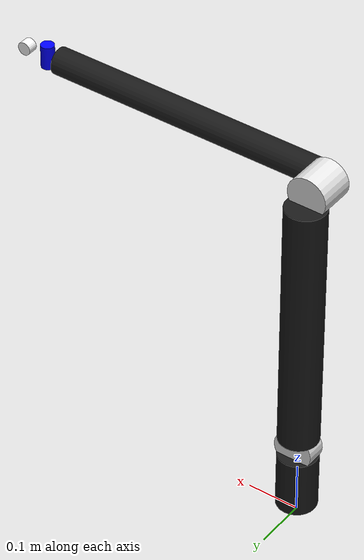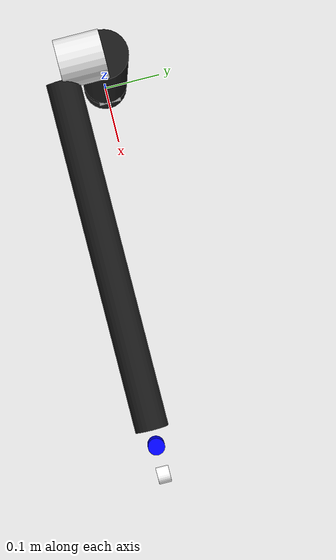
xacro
<?xml version="1.0"?>
<robot xmlns:xacro="http://www.ros.org/wiki/xacro" name="hdt">
    <include filename="$(find andalite_description)/urdf/common.xacro"/>
    <include filename="$(find andalite_description)/urdf/hdt2.xacro"/>

    <link name="arm_mount_panel_dummy">
    </link>
    <xacro:hdt_arm mounting_link="arm_mount_panel_dummy" mounting_origin="0 0 0"/>
</robot>

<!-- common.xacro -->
<robot xmlns:xacro="http://www.ros.org/wiki/xacro">
    <xacro:property name="pi" value="3.1415926535897931"/>
    <xacro:property name="inches" value="0.0254"/>
    <xacro:property name="degrees" value="0.017453293"/>
</robot>

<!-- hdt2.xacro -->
<robot xmlns:xacro="http://www.ros.org/wiki/xacro">
    <xacro:property name="length1" value="0.1524"/>
    <xacro:property name="radius1" value="0.0381"/>

    <xacro:property name="length2" value="0.0381"/>
    <xacro:property name="radius2" value="0.0381"/>

    <xacro:property name="length3" value="0.5461"/>
    <xacro:property name="radius3" value="0.0381"/>

    <xacro:property name="length4" value="0.06985"/>
    <xacro:property name="radius4" value="0.0381"/>

    <xacro:property name="length5" value="0.588"/>
    <xacro:property name="radius5" value="0.0254"/>

    <xacro:property name="length6" value="0.045"/>
    <xacro:property name="radius6" value="0.0127"/>

    <xacro:property name="length7" value="0.01905"/>
    <xacro:property name="radius7" value="0.0127"/>

    <include filename="$(find andalite_description)/config/urdf/common.xacro"/>

    <!-- macro to instantiate the hdt arm -->
    <xacro:macro name="hdt_arm" params="mounting_link mounting_origin">
        <joint name="arm_1_shoulder_twist" type="revolute">
            <parent link="${mounting_link}"/>
            <child link="arm_1_shoulder_twist_link"/>
            <limit lower="${-120*degrees}" upper="${120*degrees}" effort="10" velocity="0.38"/>
            <safety_controller soft_lower_limit="${-110*degrees}" soft_upper_limit="${110*degrees}" k_velocity="0"/>
            <axis xyz="0 0 1"/>
            <origin xyz="${mounting_origin}"/>
            <dynamics damping="10" friction="0.1"/>
        </joint>

        <link name="arm_1_shoulder_twist_link">
            <visual>
                <geometry>
                    <cylinder length="${length1-radius1}" radius="${radius1}"/>
                </geometry>
                <origin rpy="0 0 0" xyz="0.0 0.0 ${length1/2}"/>
                <material name="black">
                    <color rgba="0.1 0.1 0.1 1"/>
                </material>
            </visual>
            <collision>
                <geometry>
                    <cylinder length="${length1-radius1}" radius="${radius1}"/>
                </geometry>
                <origin rpy="0 0 0" xyz="0.0 0.0 ${length1/2}"/>
            </collision>
            <inertial>
                <mass value="1"/>
                <inertia ixx="1.0" ixy="0.0" ixz="0.0" iyy="1.0" iyz="0.0" izz="1.0"/>
                <origin xyz="0 0 ${length1/2}"/>
            </inertial>
        </link>

        <joint name="arm_2_shoulder_lift" type="revolute">
            <parent link="arm_1_shoulder_twist_link"/>
            <child link="arm_2_shoulder_lift_link"/>
            <limit lower="${-110*degrees}" upper="${110*degrees}" effort="10" velocity="0.38"/>
            <safety_controller soft_lower_limit="${-90*degrees}" soft_upper_limit="${90*degrees}" k_velocity="0"/>
            <axis xyz="0 0 -1"/>
            <origin xyz="0.0 0.0 ${length1}" rpy="${pi/2} 0 0"/>
            <dynamics damping="10" friction="0.1"/>
        </joint>

        <link name="arm_2_shoulder_lift_link" >
            <visual>
                <geometry>
                    <cylinder length="${length2}" radius="${radius2}"/>
                </geometry>
                <origin rpy="0 0 0" xyz="0.0 0 0"/>
                <material name="gray">
                    <color rgba="0.9 0.9 0.9 1"/>
                </material>
            </visual>
            <collision>
                <geometry>
                    <cylinder length="${length2}" radius="${radius2}"/>
                </geometry>
                <origin rpy="0 0 0" xyz="0.0 0 0"/>
            </collision>
            <inertial>
                <mass value="1"/>
                <inertia ixx="1.0" ixy="0.0" ixz="0.0" iyy="1.0" iyz="0.0" izz="1.0"/>
                <origin xyz="0 0 0"/>
            </inertial>
        </link>

        <joint name="arm_3_elbow_twist" type="revolute">
            <parent link="arm_2_shoulder_lift_link"/>
            <child link="arm_3_elbow_twist_link"/>
            <limit lower="${-150*degrees}" upper="${150*degrees}" effort="10" velocity="0.38"/>
            <safety_controller soft_lower_limit="${-130*degrees}" soft_upper_limit="${130*degrees}" k_velocity="0"/>
            <axis xyz="0 0 1"/>
            <origin xyz="0.0 0.0 0.0" rpy="${-pi/2} 0 0"/>
            <dynamics damping="10" friction="0.1"/>
        </joint>

        <link name="arm_3_elbow_twist_link">
            <visual>
                <geometry>
                    <cylinder length="${length3-radius3}" radius="${radius3}"/>
                </geometry>
                <origin rpy="0 0 0" xyz="0.0 0.0 ${length3/2}"/>
                <material name="black"/>
            </visual>
            <collision>
                <geometry>
                    <cylinder length="${length3-radius3}" radius="${radius3}"/>
                    <!-- Note: There is a bug in ODE that prevents collision detection with cylinders -->
                </geometry>
                <origin rpy="0 0 0" xyz="0.0 0.0 ${length3/2}"/>
            </collision>
            <inertial>
                <mass value="1"/>
                <inertia ixx="1.0" ixy="0.0" ixz="0.0" iyy="1.0" iyz="0.0" izz="1.0"/>
                <origin xyz="0 0 ${length3/2}"/>
            </inertial>
        </link>

        <joint name="arm_4_elbow_lift" type="revolute">
            <parent link="arm_3_elbow_twist_link"/>
            <child link="arm_4_elbow_lift_link"/>
            <limit lower="${-110*degrees}" upper="${110*degrees}" effort="10" velocity="0.38"/>
            <safety_controller soft_lower_limit="${-105*degrees}" soft_upper_limit="${105*degrees}" k_velocity="0"/>
            <axis xyz="0 0 -1"/>
            <origin xyz="0.0 0.0 ${length3}" rpy="${pi/2} ${pi/2} 0"/>
            <dynamics damping="10" friction="0.1"/>
        </joint>

        <link name="arm_4_elbow_lift_link">
            <visual>
                <geometry>
                    <cylinder length="${length4}" radius="${radius4}"/>
                </geometry>
                <origin rpy="0 0 0" xyz="0.0 0.0 ${length4/2}"/>
                <material name="gray"/>
            </visual>
            <collision>
                <geometry>
                    <cylinder length="${length4}" radius="${radius4}"/>
                </geometry>
                <origin rpy="0 0 0" xyz="0.0 0.0 ${length4/2}"/>
            </collision>
            <inertial>
                <mass value="1"/>
                <inertia ixx="1.0" ixy="0.0" ixz="0.0" iyy="1.0" iyz="0.0" izz="1.0"/>
                <origin xyz="0 0 ${length4/2}"/>
            </inertial>
        </link>

        <joint name="arm_5_wrist_twist" type="revolute">
            <parent link="arm_4_elbow_lift_link"/>
            <child link="arm_5_wrist_twist_link"/>
            <limit lower="${-85*degrees}" upper="${85*degrees}" effort="10" velocity="0.38"/>
            <safety_controller soft_lower_limit="${-85*degrees}" soft_upper_limit="${85*degrees}" k_velocity="0"/>
            <axis xyz="0 0 1"/>
            <origin xyz="0.0 0.0 ${length4}" rpy="${-pi/2} ${-pi/2} 0"/>
            <dynamics damping="10" friction="0.1"/>
        </joint>

        <link name="arm_5_wrist_twist_link">
            <visual>
                <geometry>
                    <cylinder length="${length5-2*radius5}" radius="${radius5}"/>
                </geometry>
                <origin rpy="0 0 0" xyz="0.0 0.0 ${length5/2}"/>
                <material name="black"/>
            </visual>
            <collision>
                <geometry>
                    <cylinder length="${length5-radius5}" radius="${radius5}"/>
                    <!-- Note: There is a bug in ODE that prevents collision detection with cylinders -->
                </geometry>
                <origin rpy="0 0 0" xyz="0.0 0.0 ${length5/2}"/>
            </collision>
            <inertial>
                <mass value="1"/>
                <inertia ixx="1.0" ixy="0.0" ixz="0.0" iyy="1.0" iyz="0.0" izz="1.0"/>
                <origin xyz="0 0 ${length5/2}"/>
            </inertial>
        </link>

        <joint name="arm_6_wrist_lift" type="revolute">
            <parent link="arm_5_wrist_twist_link"/>
            <child link="arm_6_wrist_lift_link"/>
            <limit lower="${-40*degrees}" upper="${40*degrees}" effort="10" velocity="0.38"/>
            <safety_controller soft_lower_limit="${-40*degrees}" soft_upper_limit="${40*degrees}" k_velocity="0"/>
            <axis xyz="0 0 -1"/>
            <origin xyz="0.0 0.0 ${length5}" rpy="${pi/2} -${pi/2} 0"/>
            <dynamics damping="10" friction="0.1"/>
        </joint>

        <link name="arm_6_wrist_lift_link">
            <visual>
                <geometry>
                    <cylinder length="${length6}" radius="${radius6}"/>
                </geometry>
                <origin rpy="0 0 0" xyz="0.0 0.0 0.0"/>
                <material name="gray">
                    <color rgba="0 0 1 1"/>
                </material>
            </visual>
            <collision>
                <geometry>
                    <cylinder length="${length6}" radius="${radius6}"/>
                </geometry>
                <origin rpy="0 0 0" xyz="0.0 0.0 0.0"/>
            </collision>
            <inertial>
                <mass value="1"/>
                <inertia ixx="1.0" ixy="0.0" ixz="0.0" iyy="1.0" iyz="0.0" izz="1.0"/>
            </inertial>
        </link>

        <joint name="arm_7_gripper_lift" type="revolute">
            <parent link="arm_6_wrist_lift_link"/>
            <child link="arm_7_gripper_lift_link"/>
            <limit lower="${-55*degrees}" upper="${55*degrees}" effort="10" velocity="0.38"/>
            <safety_controller soft_lower_limit="${-55*degrees}" soft_upper_limit="${55*degrees}" k_velocity="0"/>
            <axis xyz="0 0 1"/>
            <origin xyz="${length6} 0 0" rpy="${-pi/2} 0 0"/>
            <dynamics damping="10" friction="0.1"/>
        </joint>

        <link name="arm_7_gripper_lift_link">
            <visual>
                <geometry>
                    <cylinder length="${length7}" radius="${radius7}"/>
                </geometry>
                <origin rpy="0 0 0" xyz="0.0 0.0 0.0"/>
                <material name="gray">
                    <color rgba="1 1 1 1"/>
                </material>
            </visual>
            <collision>
                <geometry>
                    <cylinder length="${length7}" radius="${radius7}"/>
                </geometry>
                <origin rpy="0 0 0" xyz="0.0 0.0 0.0"/>
            </collision>
            <inertial>
                <mass value="1"/>
                <inertia ixx="1.0" ixy="0.0" ixz="0.0" iyy="1.0" iyz="0.0" izz="1.0"/>
            </inertial>
        </link>

        <include filename="$(find andalite_description)/config/urdf/hdt_transmission.xacro"/>
    </xacro:macro>
</robot>
